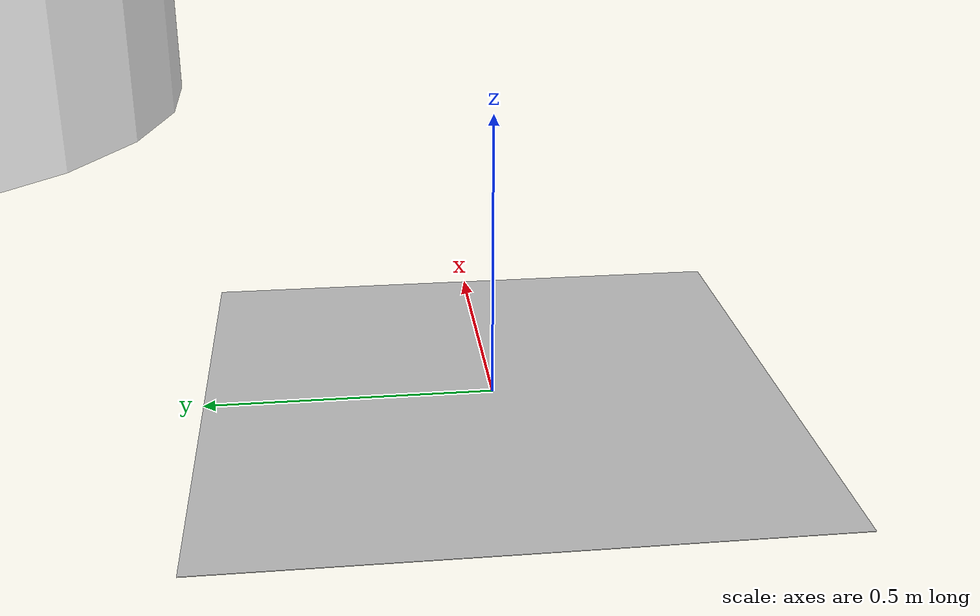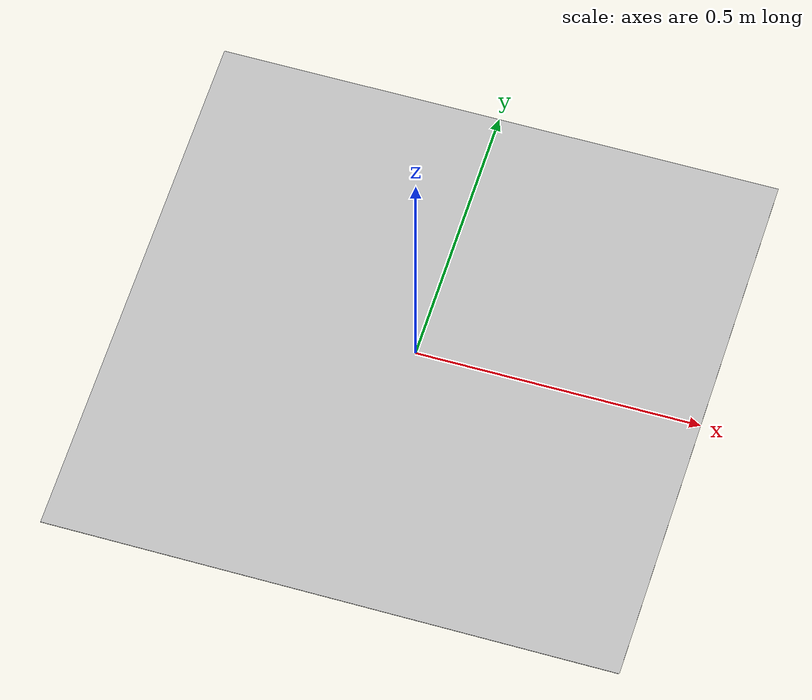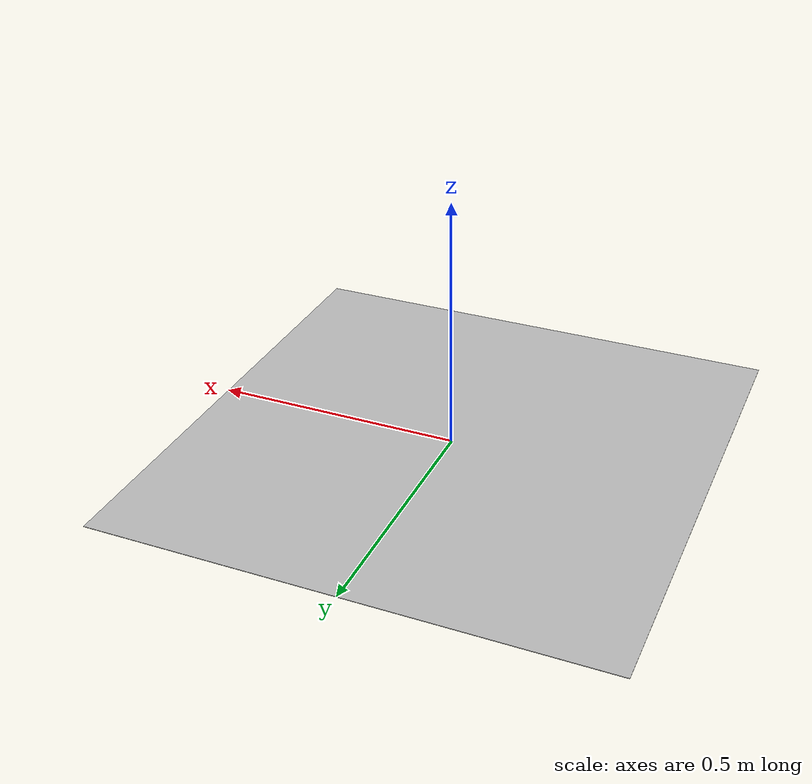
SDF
<?xml version="1.0" encoding="UTF-8" ?>
<sdf version="1.4">
  <world name="default">
    <scene>
      <ambient>0.5 0.5 0.5 1</ambient>
      <background>0.5 0.5 0.5 1</background>
      <shadows>false</shadows>
    </scene>
    <physics type="ode">
      <gravity>0 0 -9.81</gravity>
      <ode>
        <solver>
          <type>quick</type>
          <iters>10</iters>
          <sor>1.3</sor>
        </solver>
        <constraints>
          <cfm>0.0</cfm>
          <erp>0.2</erp>
          <contact_max_correcting_vel>10</contact_max_correcting_vel>
          <contact_surface_layer>0.001</contact_surface_layer>
        </constraints>
      </ode>
      <max_step_size>0.001</max_step_size>
    </physics>
    <light type="point" name="point_light_0">
      <pose>3 0 1 0.1 0.1 0</pose>
      <diffuse>0.7 0.7 0.7 1</diffuse>
      <specular>1 1 1 1</specular>
      <attenuation>
        <range>30</range>
        <constant>0.9</constant>
        <linear>0.0</linear>
      </attenuation>
      <direction>0.1 0.1 0</direction>
      <cast_shadows>false</cast_shadows>
    </light>
    <model name="plane_model">
      <link name="plane_model_link">
        <collision name="plane_model_collision">
          <geometry>
            <plane>
              <normal>0 0 1</normal>
            </plane>
          </geometry>
          <surface>
            <friction>
              <ode>
                <mu>10.0</mu>
                <mu2>10.0</mu2>
                <fdir1>0 0 0</fdir1>
                <slip1>0</slip1>
                <slip2>0</slip2>
              </ode>
            </friction>
            <bounce>
              <restitution_coefficient>0</restitution_coefficient>
              <threshold>1000000.0</threshold>
            </bounce>
            <contact>
              <ode>
                <soft_cfm>0</soft_cfm>
                <soft_erp>0.2</soft_erp>
                <kp>1e10</kp>
                <kd>1</kd>
                <max_vel>100.0</max_vel>
                <min_depth>0.0001</min_depth>
              </ode>
            </contact>
          </surface>
        </collision>
        <visual name="plane_model_visual">
          <geometry>
            <plane>
              <normal>0 0 1</normal>
            </plane>
          </geometry>
          <material>
            <script>Gazebo/Grey</script>
          </material>
          <cast_shadows>false</cast_shadows>
        </visual>
      </link>
      <static>true</static>
    </model>
    <model name="obstacles">
      <link name="obstacles_link">
        <pose>0 0 0 0 0 0</pose>
        <collision name="obstacles_collision">
          <geometry>
            <mesh>
              <uri>model://obstacles2.dae</uri>
              <scale>1 1 1</scale>
            </mesh>
          </geometry>
        </collision>
        <visual name="obstacles">
          <geometry>
            <mesh>
              <uri>model://obstacles2.dae</uri>
              <scale>1 1 1</scale>
            </mesh>
          </geometry>
          <cast_shadows>false</cast_shadows>
        </visual>
      </link>
      <static>true</static>
    </model>

  </world>
</sdf>
